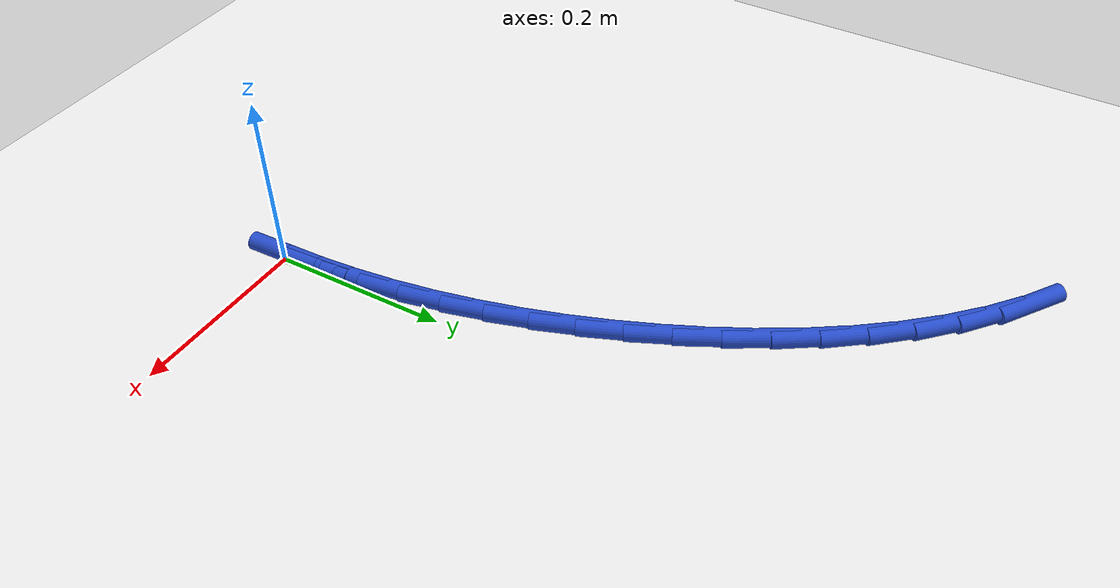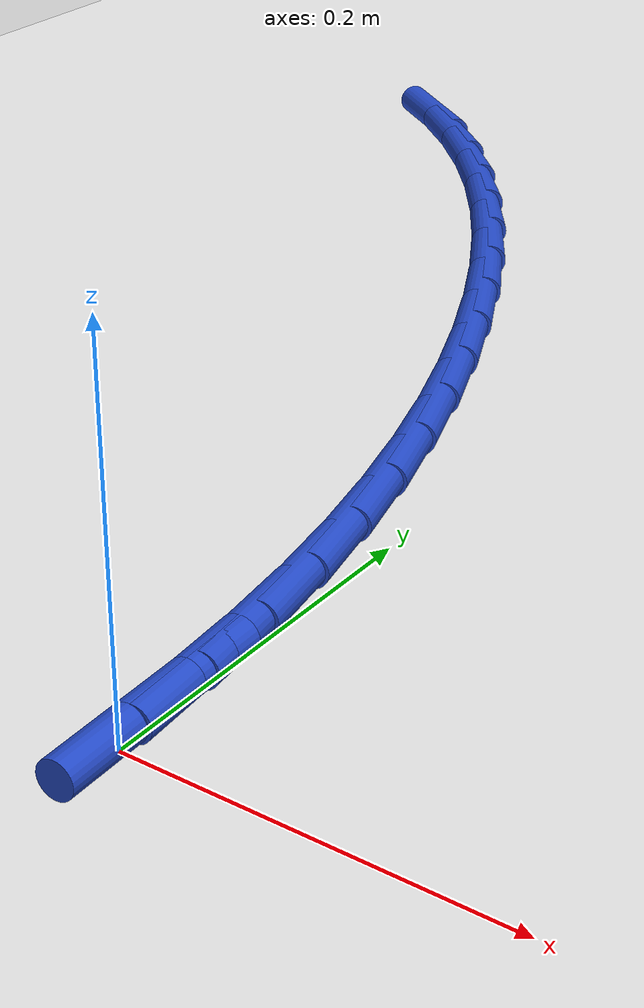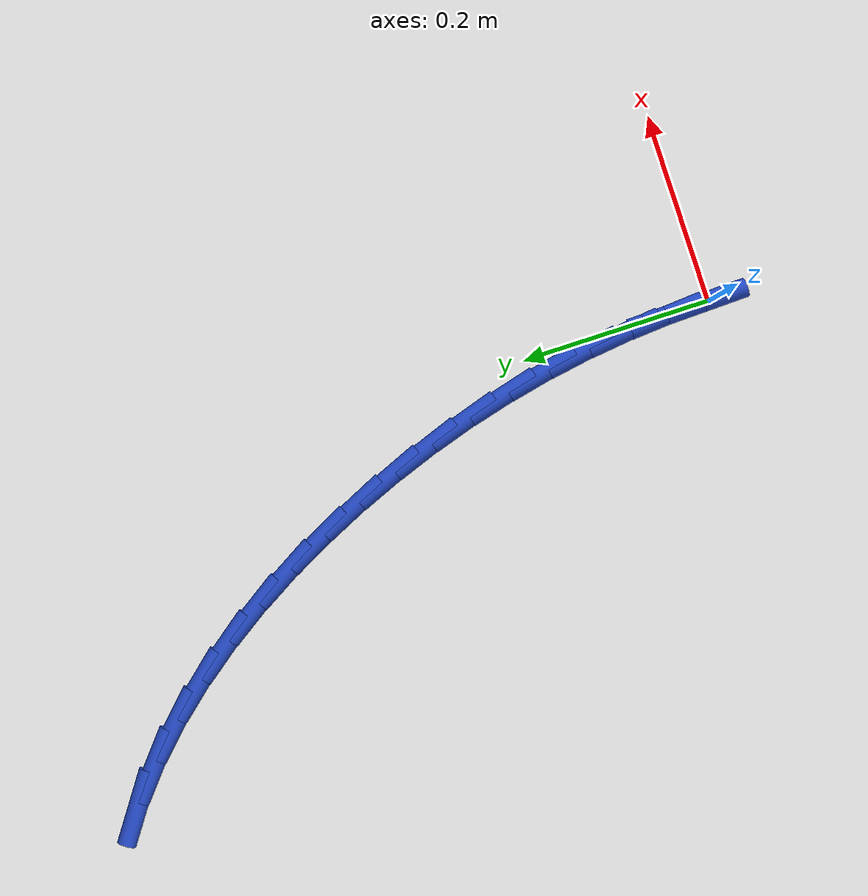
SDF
<sdf version="1.6">
 <world name="default">
  <model name="ground_plane">
   <static>1</static>
   <link name="link">
    <collision name="collision">
     <geometry><plane><normal>0 0 1</normal><size>100 100</size></plane></geometry>
     <surface><friction><ode><mu>100</mu><mu2>50</mu2></ode></friction></surface>
    </collision>
    <visual name="visual">
     <cast_shadows>0</cast_shadows>
     <geometry><plane><normal>0 0 1</normal><size>100 100</size></plane></geometry>
     <material>
      <script><uri>file://media/materials/scripts/gazebo.material</uri><name>Gazebo/WhiteGlow</name></script>
     </material>
    </visual>
   </link>
  </model>
  <model name="line">
   <link name="link_1">
    <pose>-0.0013068771516833977 0.04708700582048867 0.01 0 1.57 -1.4960087376007403</pose>
    <collision name="collision">
     <geometry><cylinder><radius>0.01</radius><length>0.08</length></cylinder></geometry>
    </collision>
    <visual name="visual">
     <material>
      <script><name>Gazebo/Blue</name><uri>file://media/materials/scripts/gazebo.material</uri></script>
     </material>
     <geometry><cylinder><radius>0.01</radius><length>0.08</length></cylinder></geometry>
    </visual>
   </link>
   <link name="link_2">
    <pose>-0.004819218803552588 0.09396364479403337 0.01 0 1.57 -1.449206003572129</pose>
    <collision name="collision">
     <geometry><cylinder><radius>0.01</radius><length>0.08</length></cylinder></geometry>
    </collision>
    <visual name="visual">
     <material>
      <script><name>Gazebo/Blue</name><uri>file://media/materials/scripts/gazebo.material</uri></script>
     </material>
     <geometry><cylinder><radius>0.01</radius><length>0.08</length></cylinder></geometry>
    </visual>
   </link>
   <link name="link_3">
    <pose>-0.010518211959583839 0.1406028859339611 0.01 0 1.57 -1.4027600925176416</pose>
    <collision name="collision">
     <geometry><cylinder><radius>0.01</radius><length>0.08</length></cylinder></geometry>
    </collision>
    <visual name="visual">
     <material>
      <script><name>Gazebo/Blue</name><uri>file://media/materials/scripts/gazebo.material</uri></script>
     </material>
     <geometry><cylinder><radius>0.01</radius><length>0.08</length></cylinder></geometry>
    </visual>
   </link>
   <link name="link_4">
    <pose>-0.01838504362375337 0.1869776982535991 0.01 0 1.57 -1.3567825330309908</pose>
    <collision name="collision">
     <geometry><cylinder><radius>0.01</radius><length>0.08</length></cylinder></geometry>
    </collision>
    <visual name="visual">
     <material>
      <script><name>Gazebo/Blue</name><uri>file://media/materials/scripts/gazebo.material</uri></script>
     </material>
     <geometry><cylinder><radius>0.01</radius><length>0.08</length></cylinder></geometry>
    </visual>
   </link>
   <link name="link_5">
    <pose>-0.02840090080003741 0.23306105076627465 0.01 0 1.57 -1.3113753411764149</pose>
    <collision name="collision">
     <geometry><cylinder><radius>0.01</radius><length>0.08</length></cylinder></geometry>
    </collision>
    <visual name="visual">
     <material>
      <script><name>Gazebo/Blue</name><uri>file://media/materials/scripts/gazebo.material</uri></script>
     </material>
     <geometry><cylinder><radius>0.01</radius><length>0.08</length></cylinder></geometry>
    </visual>
   </link>
   <link name="link_6">
    <pose>-0.040546970492412196 0.2788259124853148 0.01 0 1.57 -1.2666297400415574</pose>
    <collision name="collision">
     <geometry><cylinder><radius>0.01</radius><length>0.08</length></cylinder></geometry>
    </collision>
    <visual name="visual">
     <material>
      <script><name>Gazebo/Blue</name><uri>file://media/materials/scripts/gazebo.material</uri></script>
     </material>
     <geometry><cylinder><radius>0.01</radius><length>0.08</length></cylinder></geometry>
    </visual>
   </link>
   <link name="link_7">
    <pose>-0.054804439704853915 0.32424525242404667 0.01 0 1.57 -1.222625299350305</pose>
    <collision name="collision">
     <geometry><cylinder><radius>0.01</radius><length>0.08</length></cylinder></geometry>
    </collision>
    <visual name="visual">
     <material>
      <script><name>Gazebo/Blue</name><uri>file://media/materials/scripts/gazebo.material</uri></script>
     </material>
     <geometry><cylinder><radius>0.01</radius><length>0.08</length></cylinder></geometry>
    </visual>
   </link>
   <link name="link_8">
    <pose>-0.07115449544133881 0.36929203959579743 0.01 0 1.57 -1.1794268413409892</pose>
    <collision name="collision">
     <geometry><cylinder><radius>0.01</radius><length>0.08</length></cylinder></geometry>
    </collision>
    <visual name="visual">
     <material>
      <script><name>Gazebo/Blue</name><uri>file://media/materials/scripts/gazebo.material</uri></script>
     </material>
     <geometry><cylinder><radius>0.01</radius><length>0.08</length></cylinder></geometry>
    </visual>
   </link>
   <link name="link_9">
    <pose>-0.08957835645515856 0.41393898465846235 0.01 0 1.57 -1.1360576168852599</pose>
    <collision name="collision">
     <geometry><cylinder><radius>0.01</radius><length>0.08</length></cylinder></geometry>
    </collision>
    <visual name="visual">
     <material>
      <script><name>Gazebo/Blue</name><uri>file://media/materials/scripts/gazebo.material</uri></script>
     </material>
     <geometry><cylinder><radius>0.01</radius><length>0.08</length></cylinder></geometry>
    </visual>
   </link>
   <link name="link_10">
    <pose>-0.1100688396619832 0.458064419912318 0.01 0 1.57 -1.0896423183852832</pose>
    <collision name="collision">
     <geometry><cylinder><radius>0.01</radius><length>0.08</length></cylinder></geometry>
    </collision>
    <visual name="visual">
     <material>
      <script><name>Gazebo/Blue</name><uri>file://media/materials/scripts/gazebo.material</uri></script>
     </material>
     <geometry><cylinder><radius>0.01</radius><length>0.08</length></cylinder></geometry>
    </visual>
   </link>
   <link name="link_11">
    <pose>-0.13264757683827966 0.5013122009234536 0.01 0 1.57 -1.0390727693667015</pose>
    <collision name="collision">
     <geometry><cylinder><radius>0.01</radius><length>0.08</length></cylinder></geometry>
    </collision>
    <visual name="visual">
     <material>
      <script><name>Gazebo/Blue</name><uri>file://media/materials/scripts/gazebo.material</uri></script>
     </material>
     <geometry><cylinder><radius>0.01</radius><length>0.08</length></cylinder></geometry>
    </visual>
   </link>
   <link name="link_12">
    <pose>-0.15734059874754985 0.5432903871414707 0.01 0 1.57 -0.9835570497863425</pose>
    <collision name="collision">
     <geometry><cylinder><radius>0.01</radius><length>0.08</length></cylinder></geometry>
    </collision>
    <visual name="visual">
     <material>
      <script><name>Gazebo/Blue</name><uri>file://media/materials/scripts/gazebo.material</uri></script>
     </material>
     <geometry><cylinder><radius>0.01</radius><length>0.08</length></cylinder></geometry>
    </visual>
   </link>
   <link name="link_13">
    <pose>-0.18417393615329578 0.5836070380159706 0.01 0 1.57 -0.922257972953148</pose>
    <collision name="collision">
     <geometry><cylinder><radius>0.01</radius><length>0.08</length></cylinder></geometry>
    </collision>
    <visual name="visual">
     <material>
      <script><name>Gazebo/Blue</name><uri>file://media/materials/scripts/gazebo.material</uri></script>
     </material>
     <geometry><cylinder><radius>0.01</radius><length>0.08</length></cylinder></geometry>
    </visual>
   </link>
   <link name="link_14">
    <pose>-0.2131736198190191 0.6218702129965543 0.01 0 1.57 -0.8543189788384198</pose>
    <collision name="collision">
     <geometry><cylinder><radius>0.01</radius><length>0.08</length></cylinder></geometry>
    </collision>
    <visual name="visual">
     <material>
      <script><name>Gazebo/Blue</name><uri>file://media/materials/scripts/gazebo.material</uri></script>
     </material>
     <geometry><cylinder><radius>0.01</radius><length>0.08</length></cylinder></geometry>
    </visual>
   </link>
   <link name="link_15">
    <pose>-0.24436568050822194 0.6576879715328234 0.01 0 1.57 -0.7789204516399986</pose>
    <collision name="collision">
     <geometry><cylinder><radius>0.01</radius><length>0.08</length></cylinder></geometry>
    </collision>
    <visual name="visual">
     <material>
      <script><name>Gazebo/Blue</name><uri>file://media/materials/scripts/gazebo.material</uri></script>
     </material>
     <geometry><cylinder><radius>0.01</radius><length>0.08</length></cylinder></geometry>
    </visual>
   </link>
   <link name="link_16">
    <pose>-0.277776148984406 0.6906683730743791 0.01 0 1.57 -0.6953781946876039</pose>
    <collision name="collision">
     <geometry><cylinder><radius>0.01</radius><length>0.08</length></cylinder></geometry>
    </collision>
    <visual name="visual">
     <material>
      <script><name>Gazebo/Blue</name><uri>file://media/materials/scripts/gazebo.material</uri></script>
     </material>
     <geometry><cylinder><radius>0.01</radius><length>0.08</length></cylinder></geometry>
    </visual>
   </link>
   <link name="link_17">
    <pose>-0.3134310560110734 0.720419477070823 0.01 0 1.57 -0.603292855712652</pose>
    <collision name="collision">
     <geometry><cylinder><radius>0.01</radius><length>0.08</length></cylinder></geometry>
    </collision>
    <visual name="visual">
     <material>
      <script><name>Gazebo/Blue</name><uri>file://media/materials/scripts/gazebo.material</uri></script>
     </material>
     <geometry><cylinder><radius>0.01</radius><length>0.08</length></cylinder></geometry>
    </visual>
   </link>
   <link name="link_150">
    <pose>-3.8163916471489756e-17 5.551115123125783e-17 0.01 0 1.57 -1.5430111366596337</pose>
    <collision name="collision">
     <geometry><cylinder><radius>0.01</radius><length>0.08</length></cylinder></geometry>
    </collision>
    <visual name="visual">
     <material>
      <script><name>Gazebo/Blue</name><uri>file://media/materials/scripts/gazebo.material</uri></script>
     </material>
     <geometry><cylinder><radius>0.01</radius><length>0.08</length></cylinder></geometry>
    </visual>
   </link>
   <link name="link_151">
    <pose>-0.001308081673013061 0.04706626188202691 0.01 0 1.57 -1.5430111366596342</pose>
    <collision name="collision">
     <geometry><cylinder><radius>0.01</radius><length>0.08</length></cylinder></geometry>
    </collision>
    <visual name="visual">
     <material>
      <script><name>Gazebo/Blue</name><uri>file://media/materials/scripts/gazebo.material</uri></script>
     </material>
     <geometry><cylinder><radius>0.01</radius><length>0.08</length></cylinder></geometry>
    </visual>
   </link>
  </model>
 </world>
</sdf>
